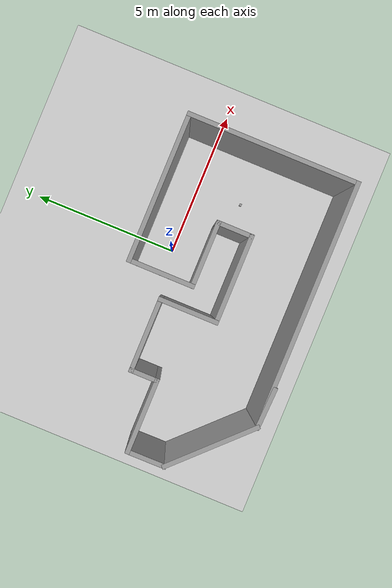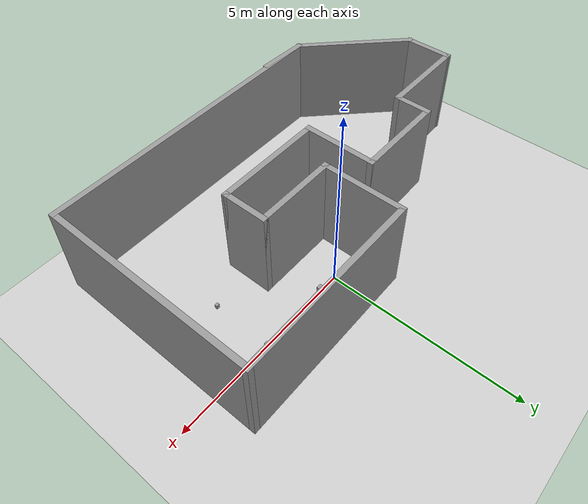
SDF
<sdf version="1.6">
 <world name="default">
  <light name="sun" type="directional">
   <pose>0 0 10 0 -0 0</pose>
   <diffuse>0.8 0.8 0.8 1</diffuse>
   <specular>0.2 0.2 0.2 1</specular>
   <attenuation>
    <range>1000</range>
    <constant>0.9</constant>
    <linear>0.01</linear>
    <quadratic>0.001</quadratic>
   </attenuation>
   <direction>-0.5 0.1 -0.9</direction>
  </light>
  <model name="ground_plane">
   <static>1</static>
   <link name="link">
    <collision name="collision">
     <geometry><plane><normal>0 0 1</normal><size>100 100</size></plane></geometry>
     <surface>
      <contact><collide_bitmask>65535</collide_bitmask></contact>
      <friction><ode><mu>100</mu><mu2>50</mu2></ode></friction>
     </surface>
    </collision>
    <visual name="visual">
     <cast_shadows>0</cast_shadows>
     <geometry><plane><normal>0 0 1</normal><size>100 100</size></plane></geometry>
     <material>
      <script><uri>file://media/materials/scripts/gazebo.material</uri><name>Gazebo/Grey</name></script>
     </material>
    </visual>
   </link>
  </model>
  <gravity>0 0 -9.8</gravity>
  <magnetic_field>6e-06 2.3e-05 -4.2e-05</magnetic_field>
  <atmosphere type="adiabatic"/>
  <physics name="default_physics" default="0" type="ode">
   <max_step_size>0.001</max_step_size>
   <real_time_factor>1</real_time_factor>
   <real_time_update_rate>1000</real_time_update_rate>
  </physics>
  <scene><ambient>0.4 0.4 0.4 1</ambient><background>0.7 0.7 0.7 1</background><shadows>1</shadows></scene>
  <spherical_coordinates>
   <surface_model>EARTH_WGS84</surface_model>
   <latitude_deg>0</latitude_deg>
   <longitude_deg>0</longitude_deg>
   <elevation>0</elevation>
   <heading_deg>0</heading_deg>
  </spherical_coordinates>
  <model name="closed_building">
   <pose>-1.17541 -1.76635 0 0 -0 0</pose>
   <link name="Wall_0">
    <collision name="Wall_0_Collision">
     <geometry><box><size>3.25 0.15 2.5</size></box></geometry>
     <pose>0 0 1.25 0 -0 0</pose>
    </collision>
    <visual name="Wall_0_Visual">
     <pose>0 0 1.25 0 -0 0</pose>
     <geometry><box><size>3.25 0.15 2.5</size></box></geometry>
     <material>
      <script><uri>file://media/materials/scripts/gazebo.material</uri><name>Gazebo/Grey</name></script>
      <ambient>1 1 1 1</ambient>
     </material>
     <meta><layer>0</layer></meta>
    </visual>
    <pose>-4.03447 -1.67669 0 0 0 -0.785398</pose>
   </link>
   <link name="Wall_10">
    <collision name="Wall_10_Collision">
     <geometry><box><size>2 0.15 2.5</size></box></geometry>
     <pose>0 0 1.25 0 -0 0</pose>
    </collision>
    <visual name="Wall_10_Visual">
     <pose>0 0 1.25 0 -0 0</pose>
     <geometry><box><size>2 0.15 2.5</size></box></geometry>
     <material>
      <script><uri>file://media/materials/scripts/gazebo.material</uri><name>Gazebo/Grey</name></script>
      <ambient>1 1 1 1</ambient>
     </material>
     <meta><layer>0</layer></meta>
    </visual>
    <pose>-0.438452 0.552296 0 0 -0 1.5708</pose>
   </link>
   <link name="Wall_11">
    <collision name="Wall_11_Collision">
     <geometry><box><size>2.5 0.15 2.5</size></box></geometry>
     <pose>0 0 1.25 0 -0 0</pose>
    </collision>
    <visual name="Wall_11_Visual">
     <pose>0 0 1.25 0 -0 0</pose>
     <geometry><box><size>2.5 0.15 2.5</size></box></geometry>
     <material>
      <script><uri>file://media/materials/scripts/gazebo.material</uri><name>Gazebo/Grey</name></script>
      <ambient>1 1 1 1</ambient>
     </material>
     <meta><layer>0</layer></meta>
    </visual>
    <pose>-1.61345 1.4773 0 0 -0 3.14159</pose>
   </link>
   <link name="Wall_12">
    <collision name="Wall_12_Collision">
     <geometry><box><size>1 0.15 2.5</size></box></geometry>
     <pose>0 0 1.25 0 -0 0</pose>
    </collision>
    <visual name="Wall_12_Visual">
     <pose>0 0 1.25 0 -0 0</pose>
     <geometry><box><size>1 0.15 2.5</size></box></geometry>
     <material>
      <script><uri>file://media/materials/scripts/gazebo.material</uri><name>Gazebo/Grey</name></script>
      <ambient>1 1 1 1</ambient>
     </material>
     <meta><layer>0</layer></meta>
    </visual>
    <pose>-2.78845 1.0523 0 0 0 -1.5708</pose>
   </link>
   <link name="Wall_13">
    <collision name="Wall_13_Collision">
     <geometry><box><size>2.5 0.15 2.5</size></box></geometry>
     <pose>0 0 1.25 0 -0 0</pose>
    </collision>
    <visual name="Wall_13_Visual">
     <pose>0 0 1.25 0 -0 0</pose>
     <geometry><box><size>2.5 0.15 2.5</size></box></geometry>
     <material>
      <script><uri>file://media/materials/scripts/gazebo.material</uri><name>Gazebo/Grey</name></script>
      <ambient>1 1 1 1</ambient>
     </material>
     <meta><layer>0</layer></meta>
    </visual>
    <pose>-3.96345 0.627296 0 0 -0 3.14159</pose>
   </link>
   <link name="Wall_14">
    <collision name="Wall_14_Collision">
     <geometry><box><size>1.358 0.15 2.5</size></box></geometry>
     <pose>0 0 1.25 0 -0 0</pose>
    </collision>
    <visual name="Wall_14_Visual">
     <pose>0 0 1.25 0 -0 0</pose>
     <geometry><box><size>1.358 0.15 2.5</size></box></geometry>
     <material>
      <script><uri>file://media/materials/scripts/gazebo.material</uri><name>Gazebo/Grey</name></script>
      <ambient>1 1 1 1</ambient>
     </material>
     <meta><layer>0</layer></meta>
    </visual>
    <pose>-5.13447 0.023312 0 0 0 -1.5642</pose>
   </link>
   <link name="Wall_2">
    <collision name="Wall_2_Collision">
     <geometry><box><size>1.42053 0.15 2.5</size></box></geometry>
     <pose>0 0 1.25 0 -0 0</pose>
    </collision>
    <visual name="Wall_2_Visual">
     <pose>0 0 1.25 0 -0 0</pose>
     <geometry><box><size>1.42053 0.15 2.5</size></box></geometry>
     <material>
      <script><uri>file://media/materials/scripts/gazebo.material</uri><name>Gazebo/Grey</name></script>
      <ambient>1 1 1 1</ambient>
     </material>
     <meta><layer>0</layer></meta>
    </visual>
    <pose>-2.30371 -2.79851 0 0 -0 3.10096</pose>
   </link>
   <link name="Wall_3">
    <collision name="Wall_3_Collision">
     <geometry><box><size>8.25 0.15 2.5</size></box></geometry>
     <pose>0 0 1.25 0 -0 0</pose>
    </collision>
    <visual name="Wall_3_Visual">
     <pose>0 0 1.25 0 -0 0</pose>
     <geometry><box><size>8.25 0.15 2.5</size></box></geometry>
     <material>
      <script><uri>file://media/materials/scripts/gazebo.material</uri><name>Gazebo/Grey</name></script>
      <ambient>1 1 1 1</ambient>
     </material>
     <meta><layer>0</layer></meta>
    </visual>
    <pose>1.11155 -2.7727 0 0 -0 0</pose>
   </link>
   <link name="Wall_4">
    <collision name="Wall_4_Collision">
     <geometry><box><size>5.75 0.15 2.5</size></box></geometry>
     <pose>0 0 1.25 0 -0 0</pose>
    </collision>
    <visual name="Wall_4_Visual">
     <pose>0 0 1.25 0 -0 0</pose>
     <geometry><box><size>5.75 0.15 2.5</size></box></geometry>
     <material>
      <script><uri>file://media/materials/scripts/gazebo.material</uri><name>Gazebo/Grey</name></script>
      <ambient>1 1 1 1</ambient>
     </material>
     <meta><layer>0</layer></meta>
    </visual>
    <pose>5.16155 0.027296 0 0 -0 1.5708</pose>
   </link>
   <link name="Wall_5">
    <collision name="Wall_5_Collision">
     <geometry><box><size>5 0.15 2.5</size></box></geometry>
     <pose>0 0 1.25 0 -0 0</pose>
    </collision>
    <visual name="Wall_5_Visual">
     <pose>0 0 1.25 0 -0 0</pose>
     <geometry><box><size>5 0.15 2.5</size></box></geometry>
     <material>
      <script><uri>file://media/materials/scripts/gazebo.material</uri><name>Gazebo/Grey</name></script>
      <ambient>1 1 1 1</ambient>
     </material>
     <meta><layer>0</layer></meta>
    </visual>
    <pose>2.73655 2.8273 0 0 -0 3.14159</pose>
   </link>
   <link name="Wall_6">
    <collision name="Wall_6_Collision">
     <geometry><box><size>2.25 0.15 2.5</size></box></geometry>
     <pose>0 0 1.25 0 -0 0</pose>
    </collision>
    <visual name="Wall_6_Visual">
     <pose>0 0 1.25 0 -0 0</pose>
     <geometry><box><size>2.25 0.15 2.5</size></box></geometry>
     <material>
      <script><uri>file://media/materials/scripts/gazebo.material</uri><name>Gazebo/Grey</name></script>
      <ambient>1 1 1 1</ambient>
     </material>
     <meta><layer>0</layer></meta>
    </visual>
    <pose>0.311548 1.7773 0 0 0 -1.5708</pose>
   </link>
   <link name="Wall_7">
    <collision name="Wall_7_Collision">
     <geometry><box><size>2.25 0.15 2.5</size></box></geometry>
     <pose>0 0 1.25 0 -0 0</pose>
    </collision>
    <visual name="Wall_7_Visual">
     <pose>0 0 1.25 0 -0 0</pose>
     <geometry><box><size>2.25 0.15 2.5</size></box></geometry>
     <material>
      <script><uri>file://media/materials/scripts/gazebo.material</uri><name>Gazebo/Grey</name></script>
      <ambient>1 1 1 1</ambient>
     </material>
     <meta><layer>0</layer></meta>
    </visual>
    <pose>1.36155 0.727296 0 0 -0 0</pose>
   </link>
   <link name="Wall_8">
    <collision name="Wall_8_Collision">
     <geometry><box><size>1.25 0.15 2.5</size></box></geometry>
     <pose>0 0 1.25 0 -0 0</pose>
    </collision>
    <visual name="Wall_8_Visual">
     <pose>0 0 1.25 0 -0 0</pose>
     <geometry><box><size>1.25 0.15 2.5</size></box></geometry>
     <material>
      <script><uri>file://media/materials/scripts/gazebo.material</uri><name>Gazebo/Grey</name></script>
      <ambient>1 1 1 1</ambient>
     </material>
     <meta><layer>0</layer></meta>
    </visual>
    <pose>2.41155 0.177296 0 0 0 -1.5708</pose>
   </link>
   <link name="Wall_9">
    <collision name="Wall_9_Collision">
     <geometry><box><size>3 0.15 2.5</size></box></geometry>
     <pose>0 0 1.25 0 -0 0</pose>
    </collision>
    <visual name="Wall_9_Visual">
     <pose>0 0 1.25 0 -0 0</pose>
     <geometry><box><size>3 0.15 2.5</size></box></geometry>
     <material>
      <script><uri>file://media/materials/scripts/gazebo.material</uri><name>Gazebo/Grey</name></script>
      <ambient>1 1 1 1</ambient>
     </material>
     <meta><layer>0</layer></meta>
    </visual>
    <pose>0.986548 -0.372704 0 0 -0 3.14159</pose>
   </link>
   <static>1</static>
  </model>
  <audio><device>default</device></audio>
  <model name="unit_box">
   <pose>0.545625 -0.004692 0.111304 0 -0 -8.6e-05</pose>
   <link name="link">
    <inertial>
     <mass>1</mass>
     <inertia>
      <ixx>0.166667</ixx>
      <ixy>0</ixy>
      <ixz>0</ixz>
      <iyy>0.166667</iyy>
      <iyz>0</iyz>
      <izz>0.166667</izz>
     </inertia>
    </inertial>
    <collision name="collision">
     <geometry><box><size>0.128476 0.108765 0.222607</size></box></geometry>
    </collision>
    <visual name="visual">
     <geometry><box><size>0.128476 0.108765 0.222607</size></box></geometry>
     <material>
      <script><name>Gazebo/Grey</name><uri>file://media/materials/scripts/gazebo.material</uri></script>
     </material>
    </visual>
   </link>
  </model>
  <model name="unit_box_clone">
   <pose>2.41854 -0.01909 0.056901 6e-06 -1e-06 1e-06</pose>
   <link name="link">
    <inertial>
     <mass>1</mass>
     <inertia>
      <ixx>0.166667</ixx>
      <ixy>0</ixy>
      <ixz>0</ixz>
      <iyy>0.166667</iyy>
      <iyz>0</iyz>
      <izz>0.166667</izz>
     </inertia>
    </inertial>
    <collision name="collision">
     <geometry><box><size>0.0832226 0.0747237 0.113821</size></box></geometry>
    </collision>
    <visual name="visual">
     <geometry><box><size>0.0832226 0.0747237 0.113821</size></box></geometry>
     <material>
      <script><name>Gazebo/Grey</name><uri>file://media/materials/scripts/gazebo.material</uri></script>
     </material>
    </visual>
   </link>
  </model>
  <model name="unit_box_clone_clone">
   <pose>2.39225 -1.57476 0.056911 2.3e-05 5e-06 1.2e-05</pose>
   <link name="link">
    <inertial>
     <mass>1</mass>
     <inertia>
      <ixx>0.166667</ixx>
      <ixy>0</ixy>
      <ixz>0</ixz>
      <iyy>0.166667</iyy>
      <iyz>0</iyz>
      <izz>0.166667</izz>
     </inertia>
    </inertial>
    <collision name="collision">
     <geometry><box><size>0.083223 0.074724 0.113821</size></box></geometry>
    </collision>
    <visual name="visual">
     <geometry><box><size>0.083223 0.074724 0.113821</size></box></geometry>
     <material>
      <script><name>Gazebo/Grey</name><uri>file://media/materials/scripts/gazebo.material</uri></script>
     </material>
    </visual>
   </link>
  </model>
 </world>
</sdf>
